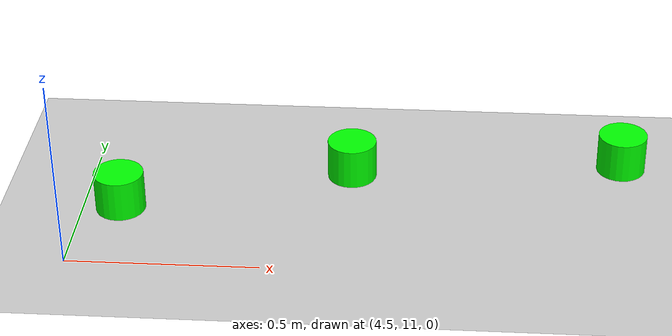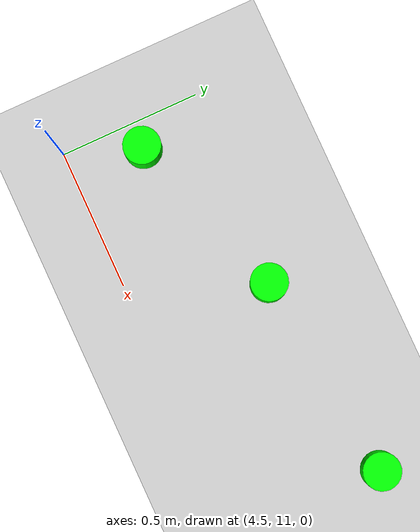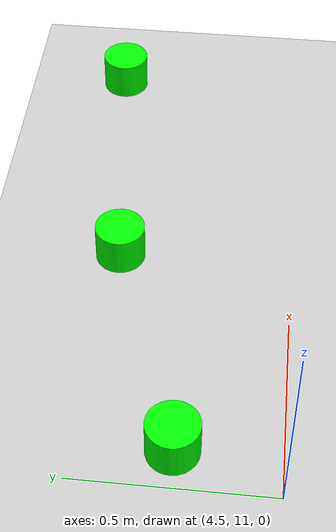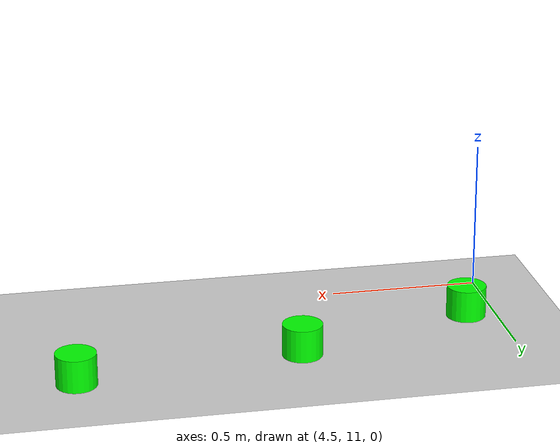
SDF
<sdf version="1.7">
 <world name="default">
  <model name="ground_plane">
   <static>1</static>
   <link name="link">
    <collision name="collision">
     <geometry><plane><normal>0 0 1</normal><size>100 100</size></plane></geometry>
     <surface>
      <contact><collide_bitmask>65535</collide_bitmask></contact>
      <friction><ode><mu>100</mu><mu2>50</mu2></ode></friction>
     </surface>
    </collision>
    <visual name="visual">
     <cast_shadows>0</cast_shadows>
     <geometry><plane><normal>0 0 1</normal><size>100 100</size></plane></geometry>
     <material>
      <script><uri>file://media/materials/scripts/gazebo.material</uri><name>Gazebo/Grey</name></script>
     </material>
    </visual>
   </link>
  </model>
  <model name="latinha_verde_clone_8_clone_2_clone_2_clone_3">
   <link name="link">
    <inertial>
     <mass>1</mass>
     <inertia><ixx>0.145833</ixx><ixy>0</ixy><ixz>0</ixz><iyy>0.145833</iyy><iyz>0</iyz><izz>0.125</izz></inertia>
    </inertial>
    <visual name="visual">
     <geometry><cylinder><radius>0.066</radius><length>0.114</length></cylinder></geometry>
     <material>
      <script><name>Gazebo/Gray</name><uri>file://media/materials/scripts/gazebo.material</uri></script>
      <shader type="pixel"><normal_map>__default__</normal_map></shader>
      <ambient>0 1 0 1</ambient>
      <diffuse>0 1 0 1</diffuse>
      <specular>0.1 0.1 0.1 1</specular>
      <emissive>0 0 0 1</emissive>
     </material>
    </visual>
    <collision name="collision">
     <geometry><cylinder><radius>0.05</radius><length>0.1</length></cylinder></geometry>
     <surface>
      <friction>
       <ode><mu>1</mu><mu2>1</mu2><fdir1>0 0 0</fdir1><slip1>0</slip1><slip2>0</slip2></ode>
       <torsional>
        <coefficient>1</coefficient>
        <patch_radius>0</patch_radius>
        <surface_radius>0</surface_radius>
        <use_patch_radius>1</use_patch_radius>
        <ode><slip>0</slip></ode>
       </torsional>
      </friction>
      <bounce><restitution_coefficient>0</restitution_coefficient><threshold>1e+06</threshold></bounce>
      <contact>
       <collide_without_contact>0</collide_without_contact>
       <collide_without_contact_bitmask>1</collide_without_contact_bitmask>
       <collide_bitmask>1</collide_bitmask>
       <ode>
        <soft_cfm>0</soft_cfm>
        <soft_erp>0.2</soft_erp>
        <kp>1e+13</kp>
        <kd>1</kd>
        <max_vel>0.01</max_vel>
        <min_depth>0</min_depth>
       </ode>
       <bullet>
        <split_impulse>1</split_impulse>
        <split_impulse_penetration_threshold>-0.01</split_impulse_penetration_threshold>
        <soft_cfm>0</soft_cfm>
        <soft_erp>0.2</soft_erp>
        <kp>1e+13</kp>
        <kd>1</kd>
       </bullet>
      </contact>
     </surface>
    </collision>
   </link>
   <static>0</static>
   <pose>5.93611 11.5344 0.05 0 -0 0.000118</pose>
  </model>
  <model name="latinha_verde_clone_8_clone_2_clone_2_clone_4">
   <link name="link">
    <inertial>
     <mass>1</mass>
     <inertia><ixx>0.145833</ixx><ixy>0</ixy><ixz>0</ixz><iyy>0.145833</iyy><iyz>0</iyz><izz>0.125</izz></inertia>
    </inertial>
    <visual name="visual">
     <geometry><cylinder><radius>0.066</radius><length>0.114</length></cylinder></geometry>
     <material>
      <script><name>Gazebo/Gray</name><uri>file://media/materials/scripts/gazebo.material</uri></script>
      <shader type="pixel"><normal_map>__default__</normal_map></shader>
      <ambient>0 1 0 1</ambient>
      <diffuse>0 1 0 1</diffuse>
      <specular>0.1 0.1 0.1 1</specular>
      <emissive>0 0 0 1</emissive>
     </material>
    </visual>
    <collision name="collision">
     <geometry><cylinder><radius>0.05</radius><length>0.1</length></cylinder></geometry>
     <surface>
      <friction>
       <ode><mu>1</mu><mu2>1</mu2><fdir1>0 0 0</fdir1><slip1>0</slip1><slip2>0</slip2></ode>
       <torsional>
        <coefficient>1</coefficient>
        <patch_radius>0</patch_radius>
        <surface_radius>0</surface_radius>
        <use_patch_radius>1</use_patch_radius>
        <ode><slip>0</slip></ode>
       </torsional>
      </friction>
      <bounce><restitution_coefficient>0</restitution_coefficient><threshold>1e+06</threshold></bounce>
      <contact>
       <collide_without_contact>0</collide_without_contact>
       <collide_without_contact_bitmask>1</collide_without_contact_bitmask>
       <collide_bitmask>1</collide_bitmask>
       <ode>
        <soft_cfm>0</soft_cfm>
        <soft_erp>0.2</soft_erp>
        <kp>1e+13</kp>
        <kd>1</kd>
        <max_vel>0.01</max_vel>
        <min_depth>0</min_depth>
       </ode>
       <bullet>
        <split_impulse>1</split_impulse>
        <split_impulse_penetration_threshold>-0.01</split_impulse_penetration_threshold>
        <soft_cfm>0</soft_cfm>
        <soft_erp>0.2</soft_erp>
        <kp>1e+13</kp>
        <kd>1</kd>
       </bullet>
      </contact>
     </surface>
    </collision>
   </link>
   <static>0</static>
   <pose>5.20191 11.4566 0.05 0 -0 0.000118</pose>
  </model>
  <model name="latinha_verde_clone_8_clone_2_clone_2_clone_5">
   <link name="link">
    <inertial>
     <mass>1</mass>
     <inertia><ixx>0.145833</ixx><ixy>0</ixy><ixz>0</ixz><iyy>0.145833</iyy><iyz>0</iyz><izz>0.125</izz></inertia>
    </inertial>
    <visual name="visual">
     <geometry><cylinder><radius>0.066</radius><length>0.114</length></cylinder></geometry>
     <material>
      <script><name>Gazebo/Gray</name><uri>file://media/materials/scripts/gazebo.material</uri></script>
      <shader type="pixel"><normal_map>__default__</normal_map></shader>
      <ambient>0 1 0 1</ambient>
      <diffuse>0 1 0 1</diffuse>
      <specular>0.1 0.1 0.1 1</specular>
      <emissive>0 0 0 1</emissive>
     </material>
    </visual>
    <collision name="collision">
     <geometry><cylinder><radius>0.05</radius><length>0.1</length></cylinder></geometry>
     <surface>
      <friction>
       <ode><mu>1</mu><mu2>1</mu2><fdir1>0 0 0</fdir1><slip1>0</slip1><slip2>0</slip2></ode>
       <torsional>
        <coefficient>1</coefficient>
        <patch_radius>0</patch_radius>
        <surface_radius>0</surface_radius>
        <use_patch_radius>1</use_patch_radius>
        <ode><slip>0</slip></ode>
       </torsional>
      </friction>
      <bounce><restitution_coefficient>0</restitution_coefficient><threshold>1e+06</threshold></bounce>
      <contact>
       <collide_without_contact>0</collide_without_contact>
       <collide_without_contact_bitmask>1</collide_without_contact_bitmask>
       <collide_bitmask>1</collide_bitmask>
       <ode>
        <soft_cfm>0</soft_cfm>
        <soft_erp>0.2</soft_erp>
        <kp>1e+13</kp>
        <kd>1</kd>
        <max_vel>0.01</max_vel>
        <min_depth>0</min_depth>
       </ode>
       <bullet>
        <split_impulse>1</split_impulse>
        <split_impulse_penetration_threshold>-0.01</split_impulse_penetration_threshold>
        <soft_cfm>0</soft_cfm>
        <soft_erp>0.2</soft_erp>
        <kp>1e+13</kp>
        <kd>1</kd>
       </bullet>
      </contact>
     </surface>
    </collision>
   </link>
   <static>0</static>
   <pose>4.5999 11.2578 0.05 0 -0 0.000118</pose>
  </model>
 </world>
</sdf>
